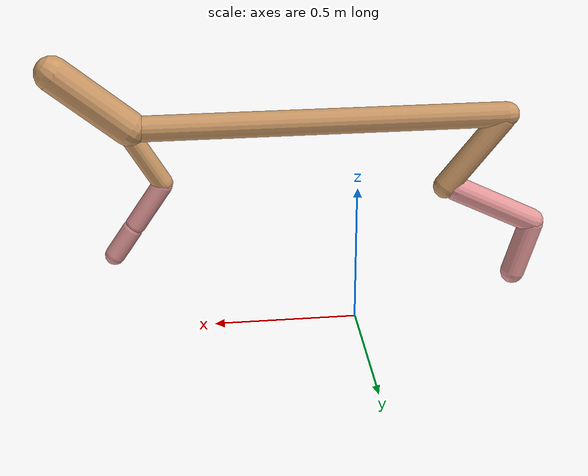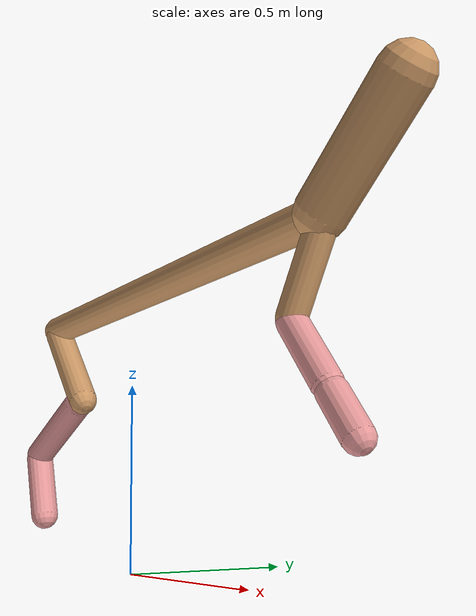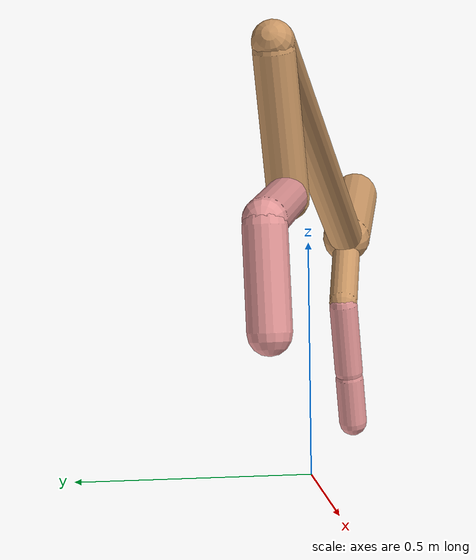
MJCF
<mujoco model="cheetah">
  <compiler angle="radian" coordinate="local" inertiafromgeom="true" settotalmass="14" />
  <default>
    <joint armature=".1" damping=".01" limited="true" solimplimit="0 .8 .03" solreflimit=".02 1" stiffness="8" />
    <geom conaffinity="0" condim="3" contype="1" friction="0.8 .1 .1" rgba="0.8 0.6 .4 1" solimp="0.0 0.8 0.01" solref="0.02 1" />
    <motor ctrllimited="true" ctrlrange="-1 1" />
  </default>
  <size nstack="300000" nuser_geom="1" />
  <option gravity="0 0 -9.81" timestep="0.01" />
  <worldbody>
    <body name="torso" pos="0.0 0.0 0.7483939534175157">
      <joint armature="0" axis="1 0 0" damping="0" limited="false" name="ignorex" pos="0 0 0" stiffness="0" type="slide" />
      <joint armature="0" axis="0 0 1" damping="0" limited="false" name="ignorez" pos="0 0 0" stiffness="0" type="slide" />
      <joint armature="0" axis="0 1 0" damping="0" limited="false" name="ignorey" pos="0 0 0" stiffness="0" type="hinge" />
      <geom fromto="-0.5 0.0 0.0 0.7684695611926814 0.0 0.0" name="torso" size="0.04280455197101278" type="capsule" />
      <geom axisangle="0 1 0 .87" name="head" pos="0.8684695611926813 0.0 0.1" size="0.05868797711289778 0.15" type="capsule" />

      <body name="bthigh" pos="-.5 0 0">
        <joint axis="0 1 0" damping="6" name="bthigh" pos="0 0 0" range="-.52 1.05" stiffness="240" type="hinge" />
        <geom axisangle="0 1 0 -3.8" name="bthigh" pos="0.10362577589238485 0.0 -0.13471350866010032" size="0.04244154872958503 0.15094671461486422" type="capsule" />
        <body name="bshin" pos="0.1672515517847697 0.0 -0.2594270173202006">
          <joint axis="0 1 0" damping="4.5" name="bshin" pos="0 0 0" range="-.785 .785" stiffness="180" type="hinge" />
          <geom axisangle="0 1 0 -2.03" name="bshin" pos="-0.1455023137055012 0.0 -0.0727511568527506" rgba="0.9 0.6 0.6 1" size="0.04244154872958503 0.15615177373951472" type="capsule" />
          <body name="bfoot" pos="-0.2910046274110024 0.0 -0.1455023137055012">
            <joint axis="0 1 0" damping="3" name="bfoot" pos="0 0 0" range="-.4 .785" stiffness="120" type="hinge" />
            <geom axisangle="0 1 0 -.27" name="bfoot" pos="0.031139068739570695 0.0 -0.10068298892461192" rgba="0.9 0.6 0.6 1" size="0.04244154872958503 0.09785511154342923" type="capsule" />
            <inertial mass="10" />
          </body>
        </body>
      </body>
      <body name="fthigh" pos="0.7684695611926813 0.0 0.0">
        <joint axis="0 1 0" damping="4.5" name="fthigh" pos="0 0 0" range="-1.5 0.8" stiffness="180" type="hinge" />
        <geom axisangle="0 1 0 .52" name="fthigh" pos="-0.057713661917011 0.0 -0.09893770614344742" size="0.034428765469514656 0.1086161051923759" type="capsule" />
        <body name="fshin" pos="-0.115427323834022 0.0 -0.19787541228689484">
          <joint axis="0 1 0" damping="3" name="fshin" pos="0 0 0" range="-1.2 1.1" stiffness="120" type="hinge" />
          <geom axisangle="0 1 0 -.6" name="fshin" pos="0.05362170490199525 0.0 -0.0742454375566088" rgba="0.9 0.6 0.6 1" size="0.034428765469514656 0.08656621917587852" type="capsule" />
          <body name="ffoot" pos="0.1072434098039905 0.0 -0.1484908751132176">
            <joint axis="0 1 0" damping="1.5" name="ffoot" pos="0 0 0" range="-3.1 -0.3" stiffness="60" type="hinge" />
            <geom axisangle="0 1 0 -.6" name="ffoot" pos="0.03806011777736182 0.0 -0.059204627653673944" rgba="0.9 0.6 0.6 1" size="0.034428765469514656 0.057166371153882053" type="capsule" />
            <inertial mass="10" />
          </body>
        </body>
      </body>
    </body>
  </worldbody>
  <actuator>
    <motor gear="120" joint="bthigh" name="bthigh" />
    <motor gear="90" joint="bshin" name="bshin" />
    <motor gear="60" joint="bfoot" name="bfoot" />
    <motor gear="120" joint="fthigh" name="fthigh" />
    <motor gear="60" joint="fshin" name="fshin" />
    <motor gear="30" joint="ffoot" name="ffoot" />
  </actuator>
</mujoco>
